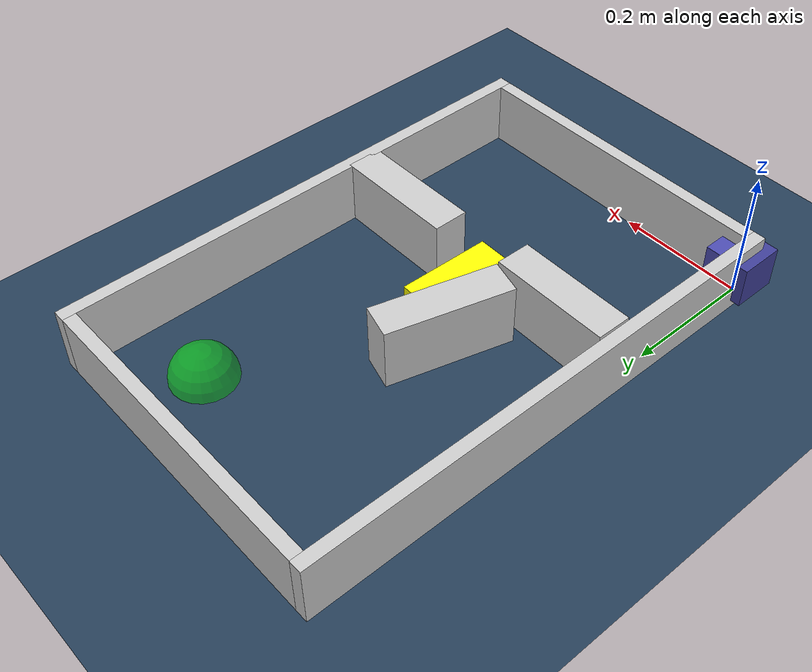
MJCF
<?xml version="1.0" ?>
<mujoco model="generated_environment">
  <option cone="elliptic" integrator="implicitfast" iterations="100" timestep="0.002"/>
  <default>
    <geom density="1"/>
  </default>
  <asset>
    <texture builtin="gradient" height="3072" rgb1="0.3 0.5 0.7" rgb2="0 0 0" type="skybox" width="512"/>
    <texture builtin="checker" height="300" mark="edge" markrgb="0.8 0.8 0.8" name="groundplane" rgb1="0.2 0.3 0.4" rgb2="0.1 0.2 0.3" type="2d" width="300"/>
    <material name="groundplane" reflectance="0.2" texrepeat="5 5" texture="groundplane" texuniform="true"/>
    <material name="robot" rgba="1.0 1.0 0.0 1.0"/>
  </asset>
  <include file="/scratch/tdn39/namo_less_depth_runtime/closed_loop_sessions_less_depth_exec/1push/1hop/env3/sessions/bootstrap_from_real_test_envs_2026-05-26/primitive_run1/iter_003/request_1780034349_bf89ee08/namo_cpp/test_xml/little-car-modeling-package/assets/mjcf/little_car.xml"/>
  <worldbody>
    <light dir="0 0 -1" directional="true" pos="0 0 1.5"/>
    <geom condim="4" friction="0.5 0.005 0.001" material="groundplane" name="floor" size="0 0 0.05" type="plane"/>
    <body name="walls">
      <geom name="wall_1" condim="4" pos="-0.01 0.3875 0.05" friction="1 0.005 0.0001" rgba="0.800000011920929 0.800000011920929 0.800000011920929 1.0" size="0.01 0.40750000000000003 0.05" type="box"/>
      <geom name="wall_2" condim="4" pos="0.5 0.3875 0.05" friction="1 0.005 0.0001" rgba="0.800000011920929 0.800000011920929 0.800000011920929 1.0" size="0.01 0.40750000000000003 0.05" type="box"/>
      <geom name="wall_3" condim="4" pos="0.245 -0.01 0.05" friction="1 0.005 0.0001" rgba="0.800000011920929 0.800000011920929 0.800000011920929 1.0" size="0.245 0.01 0.05" type="box"/>
      <geom name="wall_4" condim="4" pos="0.245 0.785 0.05" friction="1 0.005 0.0001" rgba="0.800000011920929 0.800000011920929 0.800000011920929 1.0" size="0.245 0.01 0.05" type="box"/>
    </body>
    <body name="obstacle_1_movable">
      <geom name="obstacle_1_movable" condim="4" pos="0.2536378128200695 0.30695519055752424 0.02" quat="0.01148033101448987 0 0 0.9999340988284167" friction="1 0.005 0.0001" rgba="1 1 0 1" size="0.035 0.075 0.02" type="box" mass="0.1"/>
      <joint type="free"/>
    </body>
    <body name="wall_5">
      <geom name="wall_5" condim="4" pos="0.19168659734368887 0.397973309721319 0.05" quat="0.13579494725994234 0 0 0.9907369642335293" friction="1 0.005 0.0001" rgba="0.800000011920929 0.800000011920929 0.800000011920929 1.0" size="0.0275 0.0975 0.05" type="box"/>
    </body>
    <body name="wall_6">
      <geom name="wall_6" condim="4" pos="0.3981315188457295 0.2819514486708641 0.05" quat="0.7081394145054987 0 0 0.7060726376399312" friction="1 0.005 0.0001" rgba="0.800000011920929 0.800000011920929 0.800000011920929 1.0" size="0.0275 0.0975 0.05" type="box"/>
    </body>
    <body name="wall_7">
      <geom name="wall_7" condim="4" pos="0.09809467505145592 0.26604211783107007 0.05" quat="-0.9999773963237866 0 0 0.006723603312257172" friction="1 0.005 0.0001" rgba="0.800000011920929 0.800000011920929 0.800000011920929 1.0" size="0.095 0.0275 0.05" type="box"/>
    </body>
    <site name="goal" type="sphere" size="0.05 0.05 0.05" rgba="0 1 0 0.5" pos="0.37 0.67 0.0"/>
  </worldbody>
</mujoco>

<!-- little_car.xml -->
<mujoco model="little_car">
  <compiler angle="radian" autolimits="true"/>
  <default>
    <geom condim="4"/>
    <joint damping="0.01" armature="0.0001"/>
  </default>
  <worldbody>
    <body name="car" pos="0 0 0.010000">
      <freejoint name="car_freejoint"/>
      <inertial pos="0.000000 0 0.037500" mass="0.350000"
                diaginertia="0.000266 0.000266 0.000286"/>
      <geom name="front_chassis_collision" type="box" pos="0.017500 0 0.037500"
            size="0.017500 0.035000 0.032500"
            rgba="0.3 0.3 0.7 1"/>
      <geom name="rear_chassis_collision" type="box" pos="-0.017500 0 0.037500"
            size="0.017500 0.035000 0.032500"
            rgba="0.25 0.25 0.6 1"/>
      <geom name="front_marker" type="box" pos="0.034000 0 0.050500"
            size="0.002000 0.015000 0.010000"
            rgba="1.0 0.2 0.2 1" contype="0" conaffinity="0"/>

      <body name="rear_support_body" pos="-0.030000 0.000000 0.002500">
        <joint name="rear_caster_joint" type="ball" damping="0.0001"/>
        <inertial pos="0 0 0" mass="0.025000"
                  diaginertia="0.000001 0.000001 0.000001"/>
        <geom name="rear_support" type="sphere"
              pos="0 0 0"
              size="0.002500"
              friction="0.000000 0.000000 0.000000"
              rgba="0.7 0.1 0.1 1"/>
      </body>

      <body name="front_support_body" pos="0.030000 0.000000 0.002500">
        <joint name="front_caster_joint" type="ball" damping="0.0001"/>
        <inertial pos="0 0 0" mass="0.025000"
                  diaginertia="0.000001 0.000001 0.000001"/>
        <geom name="front_support" type="sphere"
              pos="0 0 0"
              size="0.002500"
              friction="0.000000 0.000000 0.000000"
              rgba="0.1 0.7 0.1 1"/>
      </body>

      <body name="left_wheel" pos="0.000000 0.034000 0.015000">
        <inertial pos="0 0 0" mass="0.050000"
                  diaginertia="0.000003 0.000006 0.000003"/>
        <joint name="left_wheel_joint" type="hinge" axis="0 1 0"/>
        <geom name="left_wheel_collision" type="cylinder" size="0.015000 0.000500"
              euler="1.57079632679 0 0" rgba="0.1 0.1 0.1 1"/>
      </body>

      <body name="right_wheel" pos="0.000000 -0.034000 0.015000">
        <inertial pos="0 0 0" mass="0.050000"
                  diaginertia="0.000003 0.000006 0.000003"/>
        <joint name="right_wheel_joint" type="hinge" axis="0 1 0"/>
        <geom name="right_wheel_collision" type="cylinder" size="0.015000 0.000500"
              euler="1.57079632679 0 0" rgba="0.1 0.1 0.1 1"/>
      </body>
    </body>
  </worldbody>
  <contact>
    <exclude body1="car" body2="left_wheel"/>
    <exclude body1="car" body2="right_wheel"/>
  </contact>
  <actuator>
    <velocity name="left_wheel_drive" joint="left_wheel_joint"
              ctrlrange="-25.000000 25.000000"
              kv="0.750000" forcerange="-0.500000 0.500000"/>
    <velocity name="right_wheel_drive" joint="right_wheel_joint"
              ctrlrange="-25.000000 25.000000"
              kv="0.750000" forcerange="-0.500000 0.500000"/>
  </actuator>
</mujoco>
